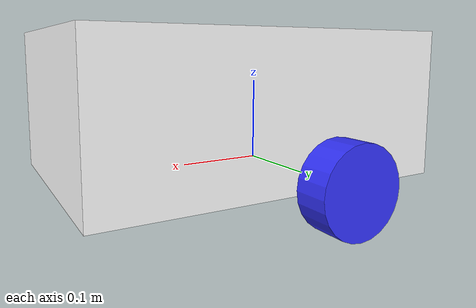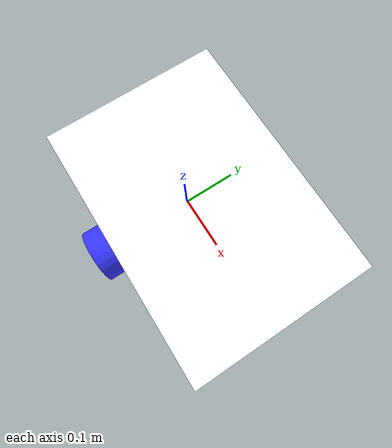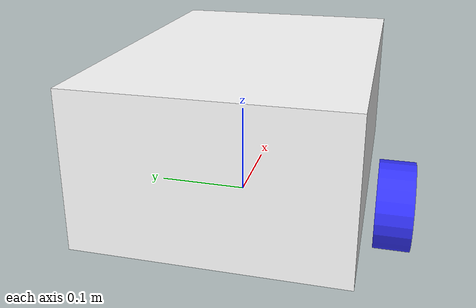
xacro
<?xml version="1.0"?>
<robot xmlns:xacro="http://www.ros.org/wiki/xacro">

    <!-- 1. Calls the inertial macros to provide inertia [Source 4]-->
    <xacro:include filename="inertial_macros.xacro"/>

    <!-- 2. Defines all the relevant colours of materials [Source 3]-->
    <material name="white">
        <color rgba="1 1 1 1"/>
    </material>

    <material name="orange">
        <color rgba="1 0.3 0.1 1"/>
    </material>

    <material name="blue">
        <color rgba="0.2 0.2 1 1"/>
    </material>

    <material name="red">
        <color rgba="1 0 0 1"/>
    </material>

    <material name="black">
        <color rgba="0 0 0 1"/>
    </material>

    <!-- 4. Introduces the base link and base footprint link-->

    <!-- 4A. This is the base link, located at the centre of the body. All points will be based of this [Source 3]-->
    <link name="base_link">
    </link>

    <!-- 5. Defines all the relevant links of the body [Source 3 and 19]-->

    <!-- 5A. This is the chassis, a box with a size of 30cm x 30cm x 15cm, located at the origin of the base link with an x-offset of 15cm and z-offset of 7.5cm-->
     <joint name="chassis_joint" type="fixed">
        <parent link="base_link"/>
        <child link="chassis"/>
        <origin xyz="-0.1 0 0"/>
    </joint>

    <link name="chassis">
        <visual>
            <origin xyz="0.15 0 0.075" rpy="0 0 0"/>
            <geometry>
                <box size="0.413 0.286 0.171"/>
            </geometry>
            <material name="white"/>
        </visual>
        <collision>
            <origin xyz="0.15 0 0.075" rpy="0 0 0"/>
            <geometry>
                <box size="0.413 0.286 0.171"/>
            </geometry>
        </collision>
        <xacro:inertial_box mass="0.5" x="0.3" y="0.3" z="0.15">
            <origin xyz="0.15 0 0.075" rpy="0 0 0"/>
        </xacro:inertial_box>
    </link>
    <gazebo reference="chassis">
        <material>Gazebo/White</material>
    </gazebo>

    <!-- 5B. This is the left wheel, a cylinder with a radius of 5cm and length of 4cm, with an y-offset of 175mm and rotated 270 degrees around the x-axis-->
    <joint name="left_wheel_joint" type="continuous">
        <parent link="base_link"/>
        <child link="left_wheel"/>
        <origin xyz="0 0.175 0" rpy="-${pi/2} 0 0"/>
        <axis xyz="0 0 1"/>
    </joint>

    <link name="left_wheel">
        <visual>
            <geometry>
                <cylinder radius="0.05" length="0.04"/>
            </geometry>
            <material name="blue"/>
        </visual>
        <collision>
            <geometry>
                <cylinder radius="0.05" length="0.04"/>
            </geometry>
        </collision>
        <xacro:inertial_cylinder mass="0.1" length="0.05" radius="0.05">
            <origin xyz="0 0 0" rpy="0 0 0"/>
        </xacro:inertial_cylinder>
    </link>

    <gazebo reference="left_wheel">
        <material>Gazebo/Blue</material>
    </gazebo>

    <!-- 5C. This is the right wheel, a cylinder with a radius of 5cm and length of 4cm, with an y-offset of 175mm and rotated 90 degrees around the x-axis-->
    <joint name="right_wheel_joint" type="continuous">
        <parent link="base_link"/>
        <child link="right_wheel"/>
        <origin xyz="0 -0.175 0" rpy="${pi/2} 0 0"/>
        <axis xyz="0 0 -1"/>
    </joint>

    <link name="right_wheel">
        <visual>
            <geometry>
                <cylinder radius="0.05" length="0.04"/>
            </geometry>
            <material name="blue"/>
        </visual>
        <collision>
            <geometry>
                <cylinder radius="0.05" length="0.04"/>
            </geometry>
        </collision>
        <xacro:inertial_cylinder mass="0.1" length="0.04" radius="0.05">
            <origin xyz="0 0 0" rpy="0 0 0"/>
        </xacro:inertial_cylinder>
    </link>

    <gazebo reference="right_wheel">
        <material>Gazebo/Blue</material>
    </gazebo>

    <!-- 5D. This is the caster wheel, a sphere with a radius of 5cm, located at an x-offset of 24cm from the chassis-->
    <joint name="caster_wheel_joint" type="fixed">
        <parent link="chassis"/>
        <child link="caster_wheel"/>
        <origin xyz="0.26 0 0" rpy="0 0 0"/>
    </joint>

    <link name="caster_wheel">
        <visual>
            <geometry>
                <sphere radius="0.05" />
            </geometry>
            <material name="black"/>
        </visual>
        <collision>
            <geometry>
                <sphere radius="0.05" />
            </geometry>
            <material name="black"/>
        </collision>
        <xacro:inertial_sphere mass="0.1" radius="0.05">
            <origin xyz="0 0 0" rpy="0 0 0"/>
        </xacro:inertial_sphere>
    </link>
    <gazebo reference="caster_wheel">
        <material>Gazebo/Black</material>
        <mu1 value="0.001"/>
        <mu2 value="0.001"/>
    </gazebo>
</robot>

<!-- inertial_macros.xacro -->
<!--This code has been obtained from source 4-->

<robot xmlns:xacro="http://www.ros.org/wiki/xacro" >

    <!-- Specify some standard inertial calculations https://en.wikipedia.org/wiki/List_of_moments_of_inertia -->
    <!-- These make use of xacro's mathematical functionality -->

    <xacro:macro name="inertial_sphere" params="mass radius *origin">
        <inertial>
            <xacro:insert_block name="origin"/>
            <mass value="${mass}" />
            <inertia ixx="${(2/5) * mass * (radius*radius)}" ixy="0.0" ixz="0.0"
                    iyy="${(2/5) * mass * (radius*radius)}" iyz="0.0"
                    izz="${(2/5) * mass * (radius*radius)}" />
        </inertial>
    </xacro:macro>

    <xacro:macro name="inertial_box" params="mass x y z *origin">
        <inertial>
            <xacro:insert_block name="origin"/>
            <mass value="${mass}" />
            <inertia ixx="${(1/12) * mass * (y*y+z*z)}" ixy="0.0" ixz="0.0"
                    iyy="${(1/12) * mass * (x*x+z*z)}" iyz="0.0"
                    izz="${(1/12) * mass * (x*x+y*y)}" />
        </inertial>
    </xacro:macro>

    <xacro:macro name="inertial_cylinder" params="mass length radius *origin">
        <inertial>
            <xacro:insert_block name="origin"/>
            <mass value="${mass}" />
            <inertia ixx="${(1/12) * mass * (3*radius*radius + length*length)}" ixy="0.0" ixz="0.0"
                    iyy="${(1/12) * mass * (3*radius*radius + length*length)}" iyz="0.0"
                    izz="${(1/2) * mass * (radius*radius)}" />
        </inertial>
    </xacro:macro>

</robot>
